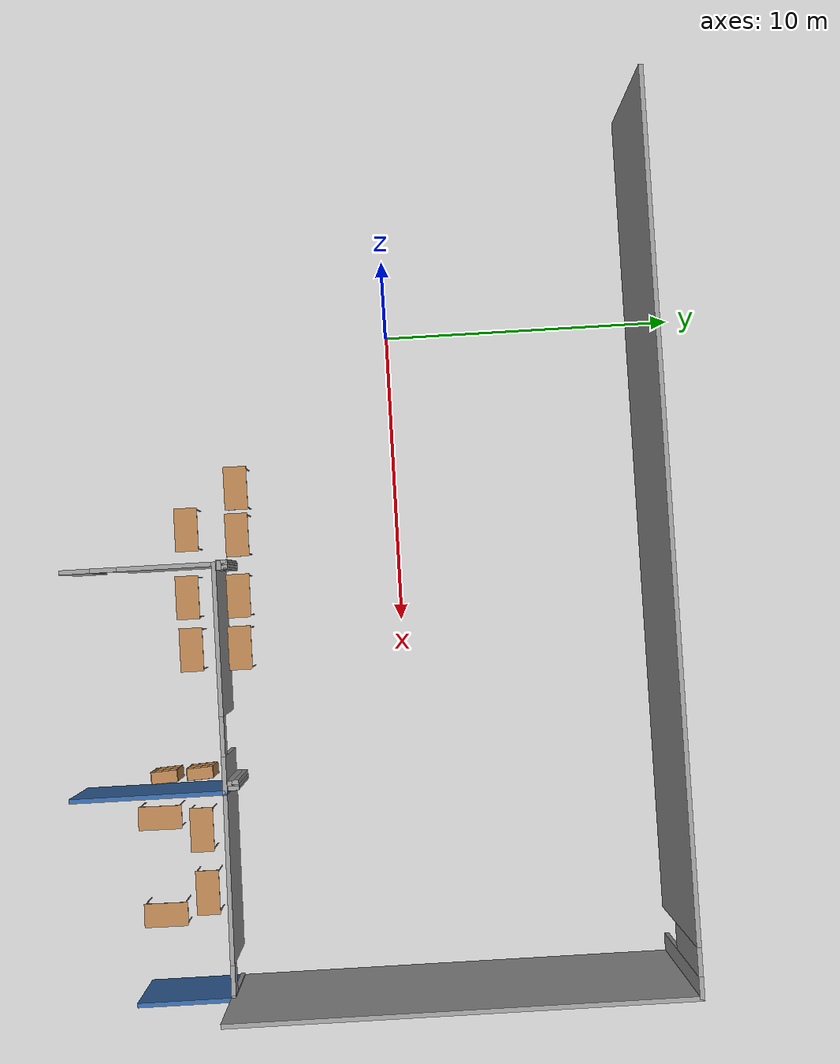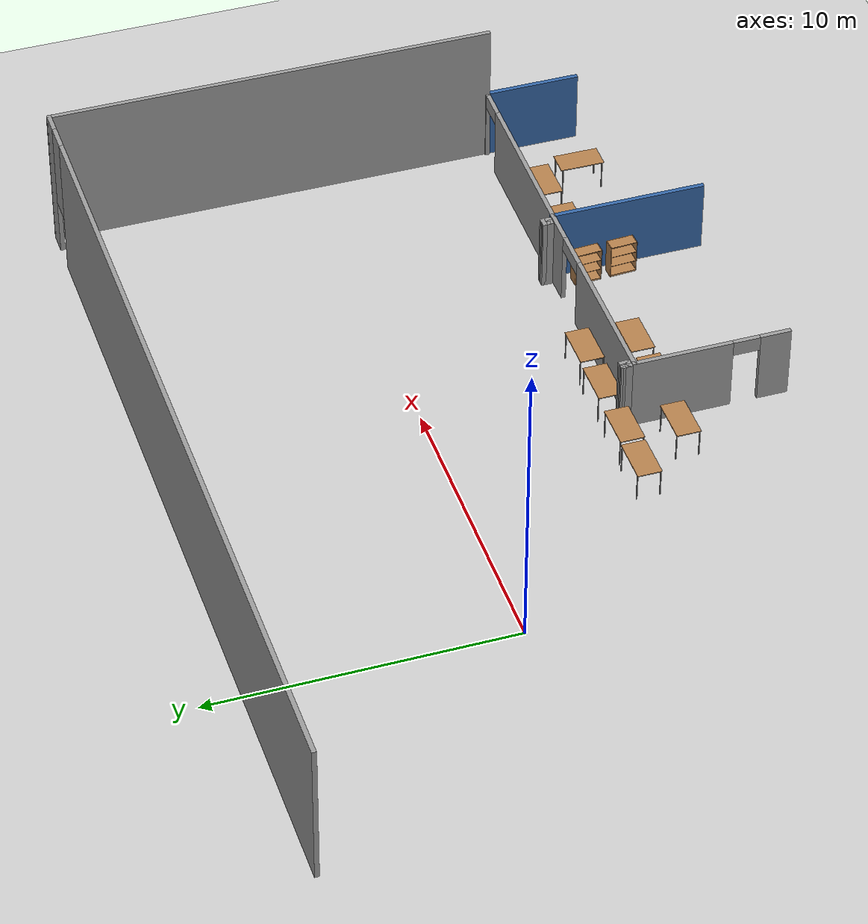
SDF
<sdf version="1.7">
 <world name="default">
  <model name="ground_plane">
   <static>1</static>
   <link name="link">
    <collision name="collision">
     <geometry><plane><normal>0 0 1</normal><size>100 100</size></plane></geometry>
     <surface>
      <contact><collide_bitmask>65535</collide_bitmask></contact>
      <friction><ode><mu>100</mu><mu2>50</mu2></ode></friction>
     </surface>
    </collision>
    <visual name="visual">
     <cast_shadows>0</cast_shadows>
     <geometry><plane><normal>0 0 1</normal><size>100 100</size></plane></geometry>
     <material>
      <script><uri>file://media/materials/scripts/gazebo.material</uri><name>Gazebo/Grey</name></script>
     </material>
    </visual>
   </link>
  </model>
  <model name="XXXXX_office_centered">
   <pose>8.46852 -9.33941 0 0 -0 0</pose>
   <link name="Wall_1">
    <pose>-0.999727 17.9501 0 0 -0 0</pose>
    <visual name="Wall_1_Visual_0">
     <pose>-0.823754 0 2.5 0 -0 0</pose>
     <geometry><box><size>27.8525 0.15 5</size></box></geometry>
     <material>
      <script><uri>file://media/materials/scripts/gazebo.material</uri><name>Gazebo/Grey</name></script>
      <ambient>1 1 1 1</ambient>
     </material>
     <meta><layer>0</layer></meta>
    </visual>
    <collision name="Wall_1_Collision_0">
     <geometry><box><size>27.8525 0.15 5</size></box></geometry>
     <pose>-0.823754 0 2.5 0 -0 0</pose>
    </collision>
    <visual name="Wall_1_Visual_1">
     <pose>14.3762 0 2.5 0 -0 0</pose>
     <geometry><box><size>0.747508 0.15 5</size></box></geometry>
     <material>
      <script><uri>file://media/materials/scripts/gazebo.material</uri><name>Gazebo/Grey</name></script>
      <ambient>1 1 1 1</ambient>
     </material>
     <meta><layer>0</layer></meta>
    </visual>
    <collision name="Wall_1_Collision_1">
     <geometry><box><size>0.747508 0.15 5</size></box></geometry>
     <pose>14.3762 0 2.5 0 -0 0</pose>
    </collision>
    <visual name="Wall_1_Visual_2">
     <pose>13.5525 0 3.5 0 -0 0</pose>
     <geometry><box><size>0.9 0.15 3</size></box></geometry>
     <material>
      <script><uri>file://media/materials/scripts/gazebo.material</uri><name>Gazebo/Grey</name></script>
      <ambient>1 1 1 1</ambient>
     </material>
     <meta><layer>0</layer></meta>
    </visual>
    <collision name="Wall_1_Collision_2">
     <geometry><box><size>0.9 0.15 3</size></box></geometry>
     <pose>13.5525 0 3.5 0 -0 0</pose>
    </collision>
   </link>
   <link name="Wall_122">
    <collision name="Wall_122_Collision">
     <geometry><box><size>0.382149 0.15 2.5</size></box></geometry>
     <pose>0 0 1.25 0 -0 0</pose>
    </collision>
    <visual name="Wall_122_Visual">
     <pose>0 0 1.25 0 -0 0</pose>
     <geometry><box><size>0.382149 0.15 2.5</size></box></geometry>
     <material>
      <script><uri>file://media/materials/scripts/gazebo.material</uri><name>Gazebo/Grey</name></script>
      <ambient>1 1 1 1</ambient>
     </material>
     <meta><layer>0</layer></meta>
    </visual>
    <pose>-0.757152 3.43307 0 0 -0 1.58005</pose>
   </link>
   <link name="Wall_123">
    <collision name="Wall_123_Collision">
     <geometry><box><size>0.330552 0.15 2.5</size></box></geometry>
     <pose>0 0 1.25 0 -0 0</pose>
    </collision>
    <visual name="Wall_123_Visual">
     <pose>0 0 1.25 0 -0 0</pose>
     <geometry><box><size>0.330552 0.15 2.5</size></box></geometry>
     <material>
      <script><uri>file://media/materials/scripts/gazebo.material</uri><name>Gazebo/Grey</name></script>
      <ambient>1 1 1 1</ambient>
     </material>
     <meta><layer>0</layer></meta>
    </visual>
    <pose>-0.66795 3.54914 0 0 -0 0</pose>
   </link>
   <link name="Wall_124">
    <collision name="Wall_124_Collision">
     <geometry><box><size>0.375731 0.15 2.5</size></box></geometry>
     <pose>0 0 1.25 0 -0 0</pose>
    </collision>
    <visual name="Wall_124_Visual">
     <pose>0 0 1.25 0 -0 0</pose>
     <geometry><box><size>0.375731 0.15 2.5</size></box></geometry>
     <material>
      <script><uri>file://media/materials/scripts/gazebo.material</uri><name>Gazebo/Grey</name></script>
      <ambient>1 1 1 1</ambient>
     </material>
     <meta><layer>0</layer></meta>
    </visual>
    <pose>-0.575524 3.43629 0 0 -0 -1.55175</pose>
   </link>
   <link name="Wall_125">
    <collision name="Wall_125_Collision">
     <geometry><box><size>0.319819 0.15 2.5</size></box></geometry>
     <pose>0 0 1.25 0 -0 0</pose>
    </collision>
    <visual name="Wall_125_Visual">
     <pose>0 0 1.25 0 -0 0</pose>
     <geometry><box><size>0.319819 0.15 2.5</size></box></geometry>
     <material>
      <script><uri>file://media/materials/scripts/gazebo.material</uri><name>Gazebo/Grey</name></script>
      <ambient>1 1 1 1</ambient>
     </material>
     <meta><layer>0</layer></meta>
    </visual>
    <pose>-0.658278 3.32452 0 0 -0 3.12893</pose>
   </link>
   <link name="Wall_127">
    <collision name="Wall_127_Collision">
     <geometry><box><size>0.371402 0.15 2.5</size></box></geometry>
     <pose>0 0 1.25 0 -0 0</pose>
    </collision>
    <visual name="Wall_127_Visual">
     <pose>0 0 1.25 0 -0 0</pose>
     <geometry><box><size>0.371402 0.15 2.5</size></box></geometry>
     <material>
      <script><uri>file://media/materials/scripts/gazebo.material</uri><name>Gazebo/Grey</name></script>
      <ambient>1 1 1 1</ambient>
     </material>
     <meta><layer>0</layer></meta>
    </visual>
    <pose>6.56704 3.43844 0 0 -0 1.5708</pose>
   </link>
   <link name="Wall_128">
    <collision name="Wall_128_Collision">
     <geometry><box><size>0.33915 0.15 2.5</size></box></geometry>
     <pose>0 0 1.25 0 -0 0</pose>
    </collision>
    <visual name="Wall_128_Visual">
     <pose>0 0 1.25 0 -0 0</pose>
     <geometry><box><size>0.33915 0.15 2.5</size></box></geometry>
     <material>
      <script><uri>file://media/materials/scripts/gazebo.material</uri><name>Gazebo/Grey</name></script>
      <ambient>1 1 1 1</ambient>
     </material>
     <meta><layer>0</layer></meta>
    </visual>
    <pose>6.66161 3.54914 0 0 -0 0</pose>
   </link>
   <link name="Wall_129">
    <collision name="Wall_129_Collision">
     <geometry><box><size>0.371402 0.15 2.5</size></box></geometry>
     <pose>0 0 1.25 0 -0 0</pose>
    </collision>
    <visual name="Wall_129_Visual">
     <pose>0 0 1.25 0 -0 0</pose>
     <geometry><box><size>0.371402 0.15 2.5</size></box></geometry>
     <material>
      <script><uri>file://media/materials/scripts/gazebo.material</uri><name>Gazebo/Grey</name></script>
      <ambient>1 1 1 1</ambient>
     </material>
     <meta><layer>0</layer></meta>
    </visual>
    <pose>6.75726 3.43844 0 0 -0 -1.56109</pose>
   </link>
   <link name="Wall_130">
    <collision name="Wall_130_Collision">
     <geometry><box><size>0.321968 0.15 2.5</size></box></geometry>
     <pose>0 0 1.25 0 -0 0</pose>
    </collision>
    <visual name="Wall_130_Visual">
     <pose>0 0 1.25 0 -0 0</pose>
     <geometry><box><size>0.321968 0.15 2.5</size></box></geometry>
     <material>
      <script><uri>file://media/materials/scripts/gazebo.material</uri><name>Gazebo/Grey</name></script>
      <ambient>1 1 1 1</ambient>
     </material>
     <meta><layer>0</layer></meta>
    </visual>
    <pose>6.67236 3.32775 0 0 -0 3.14159</pose>
   </link>
   <link name="Wall_2">
    <collision name="Wall_2_Collision">
     <geometry><box><size>15 0.15 5</size></box></geometry>
     <pose>0 0 2.5 0 -0 0</pose>
    </collision>
    <visual name="Wall_2_Visual">
     <pose>0 0 2.5 0 -0 0</pose>
     <geometry><box><size>15 0.15 5</size></box></geometry>
     <material>
      <script><uri>file://media/materials/scripts/gazebo.material</uri><name>Gazebo/Grey</name></script>
      <ambient>1 1 1 1</ambient>
     </material>
     <meta><layer>0</layer></meta>
    </visual>
    <pose>13.6753 10.5251 0 0 -0 -1.5708</pose>
   </link>
   <link name="Wall_3">
    <collision name="Wall_3_Collision">
     <geometry><box><size>3.25 0.15 2.5</size></box></geometry>
     <pose>0 0 1.25 0 -0 0</pose>
    </collision>
    <visual name="Wall_3_Visual">
     <pose>0 0 1.25 0 -0 0</pose>
     <geometry><box><size>3.25 0.15 2.5</size></box></geometry>
     <material>
      <script><uri>file://media/materials/scripts/gazebo.material</uri><name>Gazebo/Grey</name></script>
      <ambient>0.203922 0.396078 0.643137 1</ambient>
     </material>
     <meta><layer>0</layer></meta>
    </visual>
    <pose>13.6751 1.55 0 0 -0 -1.57088</pose>
   </link>
   <link name="Wall_38">
    <pose>3.09665 3.15504 0 0 -0 0</pose>
    <visual name="Wall_38_Visual_0">
     <pose>-1.29453 0 1.25 0 -0 0</pose>
     <geometry><box><size>5.16094 0.15 2.5</size></box></geometry>
     <material>
      <script><uri>file://media/materials/scripts/gazebo.material</uri><name>Gazebo/Grey</name></script>
      <ambient>1 1 1 1</ambient>
     </material>
     <meta><layer>0</layer></meta>
    </visual>
    <collision name="Wall_38_Collision_0">
     <geometry><box><size>5.16094 0.15 2.5</size></box></geometry>
     <pose>-1.29453 0 1.25 0 -0 0</pose>
    </collision>
    <visual name="Wall_38_Visual_1">
     <pose>3.2442 0 1.25 0 -0 0</pose>
     <geometry><box><size>1.26161 0.15 2.5</size></box></geometry>
     <material>
      <script><uri>file://media/materials/scripts/gazebo.material</uri><name>Gazebo/Grey</name></script>
      <ambient>1 1 1 1</ambient>
     </material>
     <meta><layer>0</layer></meta>
    </visual>
    <collision name="Wall_38_Collision_1">
     <geometry><box><size>1.26161 0.15 2.5</size></box></geometry>
     <pose>3.2442 0 1.25 0 -0 0</pose>
    </collision>
    <visual name="Wall_38_Visual_2">
     <pose>1.94966 0 2.25 0 -0 0</pose>
     <geometry><box><size>1.32746 0.15 0.5</size></box></geometry>
     <material>
      <script><uri>file://media/materials/scripts/gazebo.material</uri><name>Gazebo/Grey</name></script>
      <ambient>1 1 1 1</ambient>
     </material>
     <meta><layer>0</layer></meta>
    </visual>
    <collision name="Wall_38_Collision_2">
     <geometry><box><size>1.32746 0.15 0.5</size></box></geometry>
     <pose>1.94966 0 2.25 0 -0 0</pose>
    </collision>
   </link>
   <link name="Wall_39">
    <pose>10.286 3.12759 0 0 -0 -0.008098</pose>
    <visual name="Wall_39_Visual_0">
     <pose>-0.596566 0 1.25 0 -0 0</pose>
     <geometry><box><size>5.73545 0.15 2.5</size></box></geometry>
     <material>
      <script><uri>file://media/materials/scripts/gazebo.material</uri><name>Gazebo/Grey</name></script>
      <ambient>1 1 1 1</ambient>
     </material>
     <meta><layer>0</layer></meta>
    </visual>
    <collision name="Wall_39_Collision_0">
     <geometry><box><size>5.73545 0.15 2.5</size></box></geometry>
     <pose>-0.596566 0 1.25 0 -0 0</pose>
    </collision>
    <visual name="Wall_39_Visual_1">
     <pose>3.36061 0 1.25 0 -0 0</pose>
     <geometry><box><size>0.207364 0.15 2.5</size></box></geometry>
     <material>
      <script><uri>file://media/materials/scripts/gazebo.material</uri><name>Gazebo/Grey</name></script>
      <ambient>1 1 1 1</ambient>
     </material>
     <meta><layer>0</layer></meta>
    </visual>
    <collision name="Wall_39_Collision_1">
     <geometry><box><size>0.207364 0.15 2.5</size></box></geometry>
     <pose>3.36061 0 1.25 0 -0 0</pose>
    </collision>
    <visual name="Wall_39_Visual_2">
     <pose>2.76404 0 2.25 0 -0 0</pose>
     <geometry><box><size>0.985767 0.15 0.5</size></box></geometry>
     <material>
      <script><uri>file://media/materials/scripts/gazebo.material</uri><name>Gazebo/Grey</name></script>
      <ambient>1 1 1 1</ambient>
     </material>
     <meta><layer>0</layer></meta>
    </visual>
    <collision name="Wall_39_Collision_2">
     <geometry><box><size>0.985767 0.15 0.5</size></box></geometry>
     <pose>2.76404 0 2.25 0 -0 0</pose>
    </collision>
   </link>
   <link name="Wall_44">
    <collision name="Wall_44_Collision">
     <geometry><box><size>5.25 0.15 2.5</size></box></geometry>
     <pose>0 0 1.25 0 -0 0</pose>
    </collision>
    <visual name="Wall_44_Visual">
     <pose>0 0 1.25 0 -0 0</pose>
     <geometry><box><size>5.25 0.15 2.5</size></box></geometry>
     <material>
      <script><uri>file://media/materials/scripts/gazebo.material</uri><name>Gazebo/Grey</name></script>
      <ambient>0.203922 0.396078 0.643137 1</ambient>
     </material>
     <meta><layer>0</layer></meta>
    </visual>
    <pose>6.89646 0.605094 0 0 -0 1.57072</pose>
   </link>
   <link name="Wall_46">
    <pose>-0.703353 0.605043 0 0 -0 1.5708</pose>
    <visual name="Wall_46_Visual_0">
     <pose>-2.11145 0 1.25 0 -0 0</pose>
     <geometry><box><size>1.0271 0.15 2.5</size></box></geometry>
     <material>
      <script><uri>file://media/materials/scripts/gazebo.material</uri><name>Gazebo/Grey</name></script>
      <ambient>1 1 1 1</ambient>
     </material>
     <meta><layer>0</layer></meta>
    </visual>
    <collision name="Wall_46_Collision_0">
     <geometry><box><size>1.0271 0.15 2.5</size></box></geometry>
     <pose>-2.11145 0 1.25 0 -0 0</pose>
    </collision>
    <visual name="Wall_46_Visual_1">
     <pose>0.963547 0 1.25 0 -0 0</pose>
     <geometry><box><size>3.3229 0.15 2.5</size></box></geometry>
     <material>
      <script><uri>file://media/materials/scripts/gazebo.material</uri><name>Gazebo/Grey</name></script>
      <ambient>1 1 1 1</ambient>
     </material>
     <meta><layer>0</layer></meta>
    </visual>
    <collision name="Wall_46_Collision_1">
     <geometry><box><size>3.3229 0.15 2.5</size></box></geometry>
     <pose>0.963547 0 1.25 0 -0 0</pose>
    </collision>
    <visual name="Wall_46_Visual_2">
     <pose>-1.1479 0 2.25 0 -0 0</pose>
     <geometry><box><size>0.9 0.15 0.5</size></box></geometry>
     <material>
      <script><uri>file://media/materials/scripts/gazebo.material</uri><name>Gazebo/Grey</name></script>
      <ambient>1 1 1 1</ambient>
     </material>
     <meta><layer>0</layer></meta>
    </visual>
    <collision name="Wall_46_Collision_2">
     <geometry><box><size>0.9 0.15 0.5</size></box></geometry>
     <pose>-1.1479 0 2.25 0 -0 0</pose>
    </collision>
   </link>
   <static>1</static>
  </model>
  <model name="table_18">
   <static>1</static>
   <link name="link">
    <collision name="surface">
     <pose>0 0 1 0 -0 0</pose>
     <geometry><box><size>1.5 0.8 0.03</size></box></geometry>
     <surface><friction><ode><mu>0.6</mu><mu2>0.6</mu2></ode></friction></surface>
    </collision>
    <visual name="visual1">
     <pose>0 0 1 0 -0 0</pose>
     <geometry><box><size>1.5 0.8 0.03</size></box></geometry>
     <material>
      <script><uri>file://media/materials/scripts/gazebo.material</uri><name>Gazebo/Wood</name></script>
     </material>
    </visual>
    <collision name="collision_front_left_leg">
     <pose>0.68 0.38 0.5 0 -0 0</pose>
     <geometry><cylinder><radius>0.02</radius><length>1</length></cylinder></geometry>
    </collision>
    <visual name="visual_front_left_leg">
     <pose>0.68 0.38 0.5 0 -0 0</pose>
     <geometry><cylinder><radius>0.02</radius><length>1</length></cylinder></geometry>
     <material>
      <script><uri>file://media/materials/scripts/gazebo.material</uri><name>Gazebo/Grey</name></script>
     </material>
    </visual>
    <collision name="collision_front_right_leg">
     <pose>0.68 -0.38 0.5 0 -0 0</pose>
     <geometry><cylinder><radius>0.02</radius><length>1</length></cylinder></geometry>
    </collision>
    <visual name="visual_front_right_leg">
     <pose>0.68 -0.38 0.5 0 -0 0</pose>
     <geometry><cylinder><radius>0.02</radius><length>1</length></cylinder></geometry>
     <material>
      <script><uri>file://media/materials/scripts/gazebo.material</uri><name>Gazebo/Grey</name></script>
     </material>
    </visual>
    <collision name="collision_back_right_leg">
     <pose>-0.68 -0.38 0.5 0 -0 0</pose>
     <geometry><cylinder><radius>0.02</radius><length>1</length></cylinder></geometry>
    </collision>
    <visual name="visual_back_right_leg">
     <pose>-0.68 -0.38 0.5 0 -0 0</pose>
     <geometry><cylinder><radius>0.02</radius><length>1</length></cylinder></geometry>
     <material>
      <script><uri>file://media/materials/scripts/gazebo.material</uri><name>Gazebo/Grey</name></script>
     </material>
    </visual>
    <collision name="collision_back_left_leg">
     <pose>-0.68 0.38 0.5 0 -0 0</pose>
     <geometry><cylinder><radius>0.02</radius><length>1</length></cylinder></geometry>
    </collision>
    <visual name="visual_back_left_leg">
     <pose>-0.68 0.38 0.5 0 -0 0</pose>
     <geometry><cylinder><radius>0.02</radius><length>1</length></cylinder></geometry>
     <material>
      <script><uri>file://media/materials/scripts/gazebo.material</uri><name>Gazebo/Grey</name></script>
     </material>
    </visual>
   </link>
   <pose>16.801 -7.26422 0 0 -0 0</pose>
  </model>
  <model name="table_19">
   <static>1</static>
   <link name="link">
    <collision name="surface">
     <pose>0 0 1 0 -0 0</pose>
     <geometry><box><size>1.5 0.8 0.03</size></box></geometry>
     <surface><friction><ode><mu>0.6</mu><mu2>0.6</mu2></ode></friction></surface>
    </collision>
    <visual name="visual1">
     <pose>0 0 1 0 -0 0</pose>
     <geometry><box><size>1.5 0.8 0.03</size></box></geometry>
     <material>
      <script><uri>file://media/materials/scripts/gazebo.material</uri><name>Gazebo/Wood</name></script>
     </material>
    </visual>
    <collision name="collision_front_left_leg">
     <pose>0.68 0.38 0.5 0 -0 0</pose>
     <geometry><cylinder><radius>0.02</radius><length>1</length></cylinder></geometry>
    </collision>
    <visual name="visual_front_left_leg">
     <pose>0.68 0.38 0.5 0 -0 0</pose>
     <geometry><cylinder><radius>0.02</radius><length>1</length></cylinder></geometry>
     <material>
      <script><uri>file://media/materials/scripts/gazebo.material</uri><name>Gazebo/Grey</name></script>
     </material>
    </visual>
    <collision name="collision_front_right_leg">
     <pose>0.68 -0.38 0.5 0 -0 0</pose>
     <geometry><cylinder><radius>0.02</radius><length>1</length></cylinder></geometry>
    </collision>
    <visual name="visual_front_right_leg">
     <pose>0.68 -0.38 0.5 0 -0 0</pose>
     <geometry><cylinder><radius>0.02</radius><length>1</length></cylinder></geometry>
     <material>
      <script><uri>file://media/materials/scripts/gazebo.material</uri><name>Gazebo/Grey</name></script>
     </material>
    </visual>
    <collision name="collision_back_right_leg">
     <pose>-0.68 -0.38 0.5 0 -0 0</pose>
     <geometry><cylinder><radius>0.02</radius><length>1</length></cylinder></geometry>
    </collision>
    <visual name="visual_back_right_leg">
     <pose>-0.68 -0.38 0.5 0 -0 0</pose>
     <geometry><cylinder><radius>0.02</radius><length>1</length></cylinder></geometry>
     <material>
      <script><uri>file://media/materials/scripts/gazebo.material</uri><name>Gazebo/Grey</name></script>
     </material>
    </visual>
    <collision name="collision_back_left_leg">
     <pose>-0.68 0.38 0.5 0 -0 0</pose>
     <geometry><cylinder><radius>0.02</radius><length>1</length></cylinder></geometry>
    </collision>
    <visual name="visual_back_left_leg">
     <pose>-0.68 0.38 0.5 0 -0 0</pose>
     <geometry><cylinder><radius>0.02</radius><length>1</length></cylinder></geometry>
     <material>
      <script><uri>file://media/materials/scripts/gazebo.material</uri><name>Gazebo/Grey</name></script>
     </material>
    </visual>
   </link>
   <pose>18.946 -7.16758 0 0 -0 0</pose>
  </model>
  <model name="table_20">
   <static>1</static>
   <link name="link">
    <collision name="surface">
     <pose>0 0 1 0 -0 0</pose>
     <geometry><box><size>1.5 0.8 0.03</size></box></geometry>
     <surface><friction><ode><mu>0.6</mu><mu2>0.6</mu2></ode></friction></surface>
    </collision>
    <visual name="visual1">
     <pose>0 0 1 0 -0 0</pose>
     <geometry><box><size>1.5 0.8 0.03</size></box></geometry>
     <material>
      <script><uri>file://media/materials/scripts/gazebo.material</uri><name>Gazebo/Wood</name></script>
     </material>
    </visual>
    <collision name="collision_front_left_leg">
     <pose>0.68 0.38 0.5 0 -0 0</pose>
     <geometry><cylinder><radius>0.02</radius><length>1</length></cylinder></geometry>
    </collision>
    <visual name="visual_front_left_leg">
     <pose>0.68 0.38 0.5 0 -0 0</pose>
     <geometry><cylinder><radius>0.02</radius><length>1</length></cylinder></geometry>
     <material>
      <script><uri>file://media/materials/scripts/gazebo.material</uri><name>Gazebo/Grey</name></script>
     </material>
    </visual>
    <collision name="collision_front_right_leg">
     <pose>0.68 -0.38 0.5 0 -0 0</pose>
     <geometry><cylinder><radius>0.02</radius><length>1</length></cylinder></geometry>
    </collision>
    <visual name="visual_front_right_leg">
     <pose>0.68 -0.38 0.5 0 -0 0</pose>
     <geometry><cylinder><radius>0.02</radius><length>1</length></cylinder></geometry>
     <material>
      <script><uri>file://media/materials/scripts/gazebo.material</uri><name>Gazebo/Grey</name></script>
     </material>
    </visual>
    <collision name="collision_back_right_leg">
     <pose>-0.68 -0.38 0.5 0 -0 0</pose>
     <geometry><cylinder><radius>0.02</radius><length>1</length></cylinder></geometry>
    </collision>
    <visual name="visual_back_right_leg">
     <pose>-0.68 -0.38 0.5 0 -0 0</pose>
     <geometry><cylinder><radius>0.02</radius><length>1</length></cylinder></geometry>
     <material>
      <script><uri>file://media/materials/scripts/gazebo.material</uri><name>Gazebo/Grey</name></script>
     </material>
    </visual>
    <collision name="collision_back_left_leg">
     <pose>-0.68 0.38 0.5 0 -0 0</pose>
     <geometry><cylinder><radius>0.02</radius><length>1</length></cylinder></geometry>
    </collision>
    <visual name="visual_back_left_leg">
     <pose>-0.68 0.38 0.5 0 -0 0</pose>
     <geometry><cylinder><radius>0.02</radius><length>1</length></cylinder></geometry>
     <material>
      <script><uri>file://media/materials/scripts/gazebo.material</uri><name>Gazebo/Grey</name></script>
     </material>
    </visual>
   </link>
   <pose>6.47913 -7.29137 0 0 -0 0</pose>
  </model>
  <model name="table_22">
   <static>1</static>
   <link name="link">
    <collision name="surface">
     <pose>0 0 1 0 -0 0</pose>
     <geometry><box><size>1.5 0.8 0.03</size></box></geometry>
     <surface><friction><ode><mu>0.6</mu><mu2>0.6</mu2></ode></friction></surface>
    </collision>
    <visual name="visual1">
     <pose>0 0 1 0 -0 0</pose>
     <geometry><box><size>1.5 0.8 0.03</size></box></geometry>
     <material>
      <script><uri>file://media/materials/scripts/gazebo.material</uri><name>Gazebo/Wood</name></script>
     </material>
    </visual>
    <collision name="collision_front_left_leg">
     <pose>0.68 0.38 0.5 0 -0 0</pose>
     <geometry><cylinder><radius>0.02</radius><length>1</length></cylinder></geometry>
    </collision>
    <visual name="visual_front_left_leg">
     <pose>0.68 0.38 0.5 0 -0 0</pose>
     <geometry><cylinder><radius>0.02</radius><length>1</length></cylinder></geometry>
     <material>
      <script><uri>file://media/materials/scripts/gazebo.material</uri><name>Gazebo/Grey</name></script>
     </material>
    </visual>
    <collision name="collision_front_right_leg">
     <pose>0.68 -0.38 0.5 0 -0 0</pose>
     <geometry><cylinder><radius>0.02</radius><length>1</length></cylinder></geometry>
    </collision>
    <visual name="visual_front_right_leg">
     <pose>0.68 -0.38 0.5 0 -0 0</pose>
     <geometry><cylinder><radius>0.02</radius><length>1</length></cylinder></geometry>
     <material>
      <script><uri>file://media/materials/scripts/gazebo.material</uri><name>Gazebo/Grey</name></script>
     </material>
    </visual>
    <collision name="collision_back_right_leg">
     <pose>-0.68 -0.38 0.5 0 -0 0</pose>
     <geometry><cylinder><radius>0.02</radius><length>1</length></cylinder></geometry>
    </collision>
    <visual name="visual_back_right_leg">
     <pose>-0.68 -0.38 0.5 0 -0 0</pose>
     <geometry><cylinder><radius>0.02</radius><length>1</length></cylinder></geometry>
     <material>
      <script><uri>file://media/materials/scripts/gazebo.material</uri><name>Gazebo/Grey</name></script>
     </material>
    </visual>
    <collision name="collision_back_left_leg">
     <pose>-0.68 0.38 0.5 0 -0 0</pose>
     <geometry><cylinder><radius>0.02</radius><length>1</length></cylinder></geometry>
    </collision>
    <visual name="visual_back_left_leg">
     <pose>-0.68 0.38 0.5 0 -0 0</pose>
     <geometry><cylinder><radius>0.02</radius><length>1</length></cylinder></geometry>
     <material>
      <script><uri>file://media/materials/scripts/gazebo.material</uri><name>Gazebo/Grey</name></script>
     </material>
    </visual>
   </link>
   <pose>8.82493 -7.36244 0 0 -0 0</pose>
  </model>
  <model name="table_23">
   <static>1</static>
   <link name="link">
    <collision name="surface">
     <pose>0 0 1 0 -0 0</pose>
     <geometry><box><size>1.5 0.8 0.03</size></box></geometry>
     <surface><friction><ode><mu>0.6</mu><mu2>0.6</mu2></ode></friction></surface>
    </collision>
    <visual name="visual1">
     <pose>0 0 1 0 -0 0</pose>
     <geometry><box><size>1.5 0.8 0.03</size></box></geometry>
     <material>
      <script><uri>file://media/materials/scripts/gazebo.material</uri><name>Gazebo/Wood</name></script>
     </material>
    </visual>
    <collision name="collision_front_left_leg">
     <pose>0.68 0.38 0.5 0 -0 0</pose>
     <geometry><cylinder><radius>0.02</radius><length>1</length></cylinder></geometry>
    </collision>
    <visual name="visual_front_left_leg">
     <pose>0.68 0.38 0.5 0 -0 0</pose>
     <geometry><cylinder><radius>0.02</radius><length>1</length></cylinder></geometry>
     <material>
      <script><uri>file://media/materials/scripts/gazebo.material</uri><name>Gazebo/Grey</name></script>
     </material>
    </visual>
    <collision name="collision_front_right_leg">
     <pose>0.68 -0.38 0.5 0 -0 0</pose>
     <geometry><cylinder><radius>0.02</radius><length>1</length></cylinder></geometry>
    </collision>
    <visual name="visual_front_right_leg">
     <pose>0.68 -0.38 0.5 0 -0 0</pose>
     <geometry><cylinder><radius>0.02</radius><length>1</length></cylinder></geometry>
     <material>
      <script><uri>file://media/materials/scripts/gazebo.material</uri><name>Gazebo/Grey</name></script>
     </material>
    </visual>
    <collision name="collision_back_right_leg">
     <pose>-0.68 -0.38 0.5 0 -0 0</pose>
     <geometry><cylinder><radius>0.02</radius><length>1</length></cylinder></geometry>
    </collision>
    <visual name="visual_back_right_leg">
     <pose>-0.68 -0.38 0.5 0 -0 0</pose>
     <geometry><cylinder><radius>0.02</radius><length>1</length></cylinder></geometry>
     <material>
      <script><uri>file://media/materials/scripts/gazebo.material</uri><name>Gazebo/Grey</name></script>
     </material>
    </visual>
    <collision name="collision_back_left_leg">
     <pose>-0.68 0.38 0.5 0 -0 0</pose>
     <geometry><cylinder><radius>0.02</radius><length>1</length></cylinder></geometry>
    </collision>
    <visual name="visual_back_left_leg">
     <pose>-0.68 0.38 0.5 0 -0 0</pose>
     <geometry><cylinder><radius>0.02</radius><length>1</length></cylinder></geometry>
     <material>
      <script><uri>file://media/materials/scripts/gazebo.material</uri><name>Gazebo/Grey</name></script>
     </material>
    </visual>
   </link>
   <pose>10.6298 -7.31254 0 0 -0 0</pose>
  </model>
  <model name="table_24">
   <static>1</static>
   <link name="link">
    <collision name="surface">
     <pose>0 0 1 0 -0 0</pose>
     <geometry><box><size>1.5 0.8 0.03</size></box></geometry>
     <surface><friction><ode><mu>0.6</mu><mu2>0.6</mu2></ode></friction></surface>
    </collision>
    <visual name="visual1">
     <pose>0 0 1 0 -0 0</pose>
     <geometry><box><size>1.5 0.8 0.03</size></box></geometry>
     <material>
      <script><uri>file://media/materials/scripts/gazebo.material</uri><name>Gazebo/Wood</name></script>
     </material>
    </visual>
    <collision name="collision_front_left_leg">
     <pose>0.68 0.38 0.5 0 -0 0</pose>
     <geometry><cylinder><radius>0.02</radius><length>1</length></cylinder></geometry>
    </collision>
    <visual name="visual_front_left_leg">
     <pose>0.68 0.38 0.5 0 -0 0</pose>
     <geometry><cylinder><radius>0.02</radius><length>1</length></cylinder></geometry>
     <material>
      <script><uri>file://media/materials/scripts/gazebo.material</uri><name>Gazebo/Grey</name></script>
     </material>
    </visual>
    <collision name="collision_front_right_leg">
     <pose>0.68 -0.38 0.5 0 -0 0</pose>
     <geometry><cylinder><radius>0.02</radius><length>1</length></cylinder></geometry>
    </collision>
    <visual name="visual_front_right_leg">
     <pose>0.68 -0.38 0.5 0 -0 0</pose>
     <geometry><cylinder><radius>0.02</radius><length>1</length></cylinder></geometry>
     <material>
      <script><uri>file://media/materials/scripts/gazebo.material</uri><name>Gazebo/Grey</name></script>
     </material>
    </visual>
    <collision name="collision_back_right_leg">
     <pose>-0.68 -0.38 0.5 0 -0 0</pose>
     <geometry><cylinder><radius>0.02</radius><length>1</length></cylinder></geometry>
    </collision>
    <visual name="visual_back_right_leg">
     <pose>-0.68 -0.38 0.5 0 -0 0</pose>
     <geometry><cylinder><radius>0.02</radius><length>1</length></cylinder></geometry>
     <material>
      <script><uri>file://media/materials/scripts/gazebo.material</uri><name>Gazebo/Grey</name></script>
     </material>
    </visual>
    <collision name="collision_back_left_leg">
     <pose>-0.68 0.38 0.5 0 -0 0</pose>
     <geometry><cylinder><radius>0.02</radius><length>1</length></cylinder></geometry>
    </collision>
    <visual name="visual_back_left_leg">
     <pose>-0.68 0.38 0.5 0 -0 0</pose>
     <geometry><cylinder><radius>0.02</radius><length>1</length></cylinder></geometry>
     <material>
      <script><uri>file://media/materials/scripts/gazebo.material</uri><name>Gazebo/Grey</name></script>
     </material>
    </visual>
   </link>
   <pose>6.75369 -5.54528 0 0 -0 0</pose>
  </model>
  <model name="table_25">
   <static>1</static>
   <link name="link">
    <collision name="surface">
     <pose>0 0 1 0 -0 0</pose>
     <geometry><box><size>1.5 0.8 0.03</size></box></geometry>
     <surface><friction><ode><mu>0.6</mu><mu2>0.6</mu2></ode></friction></surface>
    </collision>
    <visual name="visual1">
     <pose>0 0 1 0 -0 0</pose>
     <geometry><box><size>1.5 0.8 0.03</size></box></geometry>
     <material>
      <script><uri>file://media/materials/scripts/gazebo.material</uri><name>Gazebo/Wood</name></script>
     </material>
    </visual>
    <collision name="collision_front_left_leg">
     <pose>0.68 0.38 0.5 0 -0 0</pose>
     <geometry><cylinder><radius>0.02</radius><length>1</length></cylinder></geometry>
    </collision>
    <visual name="visual_front_left_leg">
     <pose>0.68 0.38 0.5 0 -0 0</pose>
     <geometry><cylinder><radius>0.02</radius><length>1</length></cylinder></geometry>
     <material>
      <script><uri>file://media/materials/scripts/gazebo.material</uri><name>Gazebo/Grey</name></script>
     </material>
    </visual>
    <collision name="collision_front_right_leg">
     <pose>0.68 -0.38 0.5 0 -0 0</pose>
     <geometry><cylinder><radius>0.02</radius><length>1</length></cylinder></geometry>
    </collision>
    <visual name="visual_front_right_leg">
     <pose>0.68 -0.38 0.5 0 -0 0</pose>
     <geometry><cylinder><radius>0.02</radius><length>1</length></cylinder></geometry>
     <material>
      <script><uri>file://media/materials/scripts/gazebo.material</uri><name>Gazebo/Grey</name></script>
     </material>
    </visual>
    <collision name="collision_back_right_leg">
     <pose>-0.68 -0.38 0.5 0 -0 0</pose>
     <geometry><cylinder><radius>0.02</radius><length>1</length></cylinder></geometry>
    </collision>
    <visual name="visual_back_right_leg">
     <pose>-0.68 -0.38 0.5 0 -0 0</pose>
     <geometry><cylinder><radius>0.02</radius><length>1</length></cylinder></geometry>
     <material>
      <script><uri>file://media/materials/scripts/gazebo.material</uri><name>Gazebo/Grey</name></script>
     </material>
    </visual>
    <collision name="collision_back_left_leg">
     <pose>-0.68 0.38 0.5 0 -0 0</pose>
     <geometry><cylinder><radius>0.02</radius><length>1</length></cylinder></geometry>
    </collision>
    <visual name="visual_back_left_leg">
     <pose>-0.68 0.38 0.5 0 -0 0</pose>
     <geometry><cylinder><radius>0.02</radius><length>1</length></cylinder></geometry>
     <material>
      <script><uri>file://media/materials/scripts/gazebo.material</uri><name>Gazebo/Grey</name></script>
     </material>
    </visual>
   </link>
   <pose>5.1313 -5.51044 0 0 -0 0</pose>
  </model>
  <model name="table_27">
   <static>1</static>
   <link name="link">
    <collision name="surface">
     <pose>0 0 1 0 -0 0</pose>
     <geometry><box><size>1.5 0.8 0.03</size></box></geometry>
     <surface><friction><ode><mu>0.6</mu><mu2>0.6</mu2></ode></friction></surface>
    </collision>
    <visual name="visual1">
     <pose>0 0 1 0 -0 0</pose>
     <geometry><box><size>1.5 0.8 0.03</size></box></geometry>
     <material>
      <script><uri>file://media/materials/scripts/gazebo.material</uri><name>Gazebo/Wood</name></script>
     </material>
    </visual>
    <collision name="collision_front_left_leg">
     <pose>0.68 0.38 0.5 0 -0 0</pose>
     <geometry><cylinder><radius>0.02</radius><length>1</length></cylinder></geometry>
    </collision>
    <visual name="visual_front_left_leg">
     <pose>0.68 0.38 0.5 0 -0 0</pose>
     <geometry><cylinder><radius>0.02</radius><length>1</length></cylinder></geometry>
     <material>
      <script><uri>file://media/materials/scripts/gazebo.material</uri><name>Gazebo/Grey</name></script>
     </material>
    </visual>
    <collision name="collision_front_right_leg">
     <pose>0.68 -0.38 0.5 0 -0 0</pose>
     <geometry><cylinder><radius>0.02</radius><length>1</length></cylinder></geometry>
    </collision>
    <visual name="visual_front_right_leg">
     <pose>0.68 -0.38 0.5 0 -0 0</pose>
     <geometry><cylinder><radius>0.02</radius><length>1</length></cylinder></geometry>
     <material>
      <script><uri>file://media/materials/scripts/gazebo.material</uri><name>Gazebo/Grey</name></script>
     </material>
    </visual>
    <collision name="collision_back_right_leg">
     <pose>-0.68 -0.38 0.5 0 -0 0</pose>
     <geometry><cylinder><radius>0.02</radius><length>1</length></cylinder></geometry>
    </collision>
    <visual name="visual_back_right_leg">
     <pose>-0.68 -0.38 0.5 0 -0 0</pose>
     <geometry><cylinder><radius>0.02</radius><length>1</length></cylinder></geometry>
     <material>
      <script><uri>file://media/materials/scripts/gazebo.material</uri><name>Gazebo/Grey</name></script>
     </material>
    </visual>
    <collision name="collision_back_left_leg">
     <pose>-0.68 0.38 0.5 0 -0 0</pose>
     <geometry><cylinder><radius>0.02</radius><length>1</length></cylinder></geometry>
    </collision>
    <visual name="visual_back_left_leg">
     <pose>-0.68 0.38 0.5 0 -0 0</pose>
     <geometry><cylinder><radius>0.02</radius><length>1</length></cylinder></geometry>
     <material>
      <script><uri>file://media/materials/scripts/gazebo.material</uri><name>Gazebo/Grey</name></script>
     </material>
    </visual>
   </link>
   <pose>8.8621 -5.59459 0 0 -0 0</pose>
  </model>
  <model name="table_28">
   <static>1</static>
   <link name="link">
    <collision name="surface">
     <pose>0 0 1 0 -0 0</pose>
     <geometry><box><size>1.5 0.8 0.03</size></box></geometry>
     <surface><friction><ode><mu>0.6</mu><mu2>0.6</mu2></ode></friction></surface>
    </collision>
    <visual name="visual1">
     <pose>0 0 1 0 -0 0</pose>
     <geometry><box><size>1.5 0.8 0.03</size></box></geometry>
     <material>
      <script><uri>file://media/materials/scripts/gazebo.material</uri><name>Gazebo/Wood</name></script>
     </material>
    </visual>
    <collision name="collision_front_left_leg">
     <pose>0.68 0.38 0.5 0 -0 0</pose>
     <geometry><cylinder><radius>0.02</radius><length>1</length></cylinder></geometry>
    </collision>
    <visual name="visual_front_left_leg">
     <pose>0.68 0.38 0.5 0 -0 0</pose>
     <geometry><cylinder><radius>0.02</radius><length>1</length></cylinder></geometry>
     <material>
      <script><uri>file://media/materials/scripts/gazebo.material</uri><name>Gazebo/Grey</name></script>
     </material>
    </visual>
    <collision name="collision_front_right_leg">
     <pose>0.68 -0.38 0.5 0 -0 0</pose>
     <geometry><cylinder><radius>0.02</radius><length>1</length></cylinder></geometry>
    </collision>
    <visual name="visual_front_right_leg">
     <pose>0.68 -0.38 0.5 0 -0 0</pose>
     <geometry><cylinder><radius>0.02</radius><length>1</length></cylinder></geometry>
     <material>
      <script><uri>file://media/materials/scripts/gazebo.material</uri><name>Gazebo/Grey</name></script>
     </material>
    </visual>
    <collision name="collision_back_right_leg">
     <pose>-0.68 -0.38 0.5 0 -0 0</pose>
     <geometry><cylinder><radius>0.02</radius><length>1</length></cylinder></geometry>
    </collision>
    <visual name="visual_back_right_leg">
     <pose>-0.68 -0.38 0.5 0 -0 0</pose>
     <geometry><cylinder><radius>0.02</radius><length>1</length></cylinder></geometry>
     <material>
      <script><uri>file://media/materials/scripts/gazebo.material</uri><name>Gazebo/Grey</name></script>
     </material>
    </visual>
    <collision name="collision_back_left_leg">
     <pose>-0.68 0.38 0.5 0 -0 0</pose>
     <geometry><cylinder><radius>0.02</radius><length>1</length></cylinder></geometry>
    </collision>
    <visual name="visual_back_left_leg">
     <pose>-0.68 0.38 0.5 0 -0 0</pose>
     <geometry><cylinder><radius>0.02</radius><length>1</length></cylinder></geometry>
     <material>
      <script><uri>file://media/materials/scripts/gazebo.material</uri><name>Gazebo/Grey</name></script>
     </material>
    </visual>
   </link>
   <pose>10.6567 -5.63519 0 0 -0 0</pose>
  </model>
  <model name="table_26_clone_2">
   <static>1</static>
   <link name="link">
    <collision name="surface">
     <pose>0 0 1 0 -0 0</pose>
     <geometry><box><size>1.5 0.8 0.03</size></box></geometry>
     <surface><friction><ode><mu>0.6</mu><mu2>0.6</mu2></ode></friction></surface>
    </collision>
    <visual name="visual1">
     <pose>0 0 1 0 -0 0</pose>
     <geometry><box><size>1.5 0.8 0.03</size></box></geometry>
     <material>
      <script><uri>file://media/materials/scripts/gazebo.material</uri><name>Gazebo/Wood</name></script>
     </material>
    </visual>
    <collision name="collision_front_left_leg">
     <pose>0.68 0.38 0.5 0 -0 0</pose>
     <geometry><cylinder><radius>0.02</radius><length>1</length></cylinder></geometry>
    </collision>
    <visual name="visual_front_left_leg">
     <pose>0.68 0.38 0.5 0 -0 0</pose>
     <geometry><cylinder><radius>0.02</radius><length>1</length></cylinder></geometry>
     <material>
      <script><uri>file://media/materials/scripts/gazebo.material</uri><name>Gazebo/Grey</name></script>
     </material>
    </visual>
    <collision name="collision_front_right_leg">
     <pose>0.68 -0.38 0.5 0 -0 0</pose>
     <geometry><cylinder><radius>0.02</radius><length>1</length></cylinder></geometry>
    </collision>
    <visual name="visual_front_right_leg">
     <pose>0.68 -0.38 0.5 0 -0 0</pose>
     <geometry><cylinder><radius>0.02</radius><length>1</length></cylinder></geometry>
     <material>
      <script><uri>file://media/materials/scripts/gazebo.material</uri><name>Gazebo/Grey</name></script>
     </material>
    </visual>
    <collision name="collision_back_right_leg">
     <pose>-0.68 -0.38 0.5 0 -0 0</pose>
     <geometry><cylinder><radius>0.02</radius><length>1</length></cylinder></geometry>
    </collision>
    <visual name="visual_back_right_leg">
     <pose>-0.68 -0.38 0.5 0 -0 0</pose>
     <geometry><cylinder><radius>0.02</radius><length>1</length></cylinder></geometry>
     <material>
      <script><uri>file://media/materials/scripts/gazebo.material</uri><name>Gazebo/Grey</name></script>
     </material>
    </visual>
    <collision name="collision_back_left_leg">
     <pose>-0.68 0.38 0.5 0 -0 0</pose>
     <geometry><cylinder><radius>0.02</radius><length>1</length></cylinder></geometry>
    </collision>
    <visual name="visual_back_left_leg">
     <pose>-0.68 0.38 0.5 0 -0 0</pose>
     <geometry><cylinder><radius>0.02</radius><length>1</length></cylinder></geometry>
     <material>
      <script><uri>file://media/materials/scripts/gazebo.material</uri><name>Gazebo/Grey</name></script>
     </material>
    </visual>
   </link>
   <pose>16.3141 -8.67587 0 0 0 -1.57974</pose>
  </model>
  <model name="table_26_clone_4">
   <static>1</static>
   <link name="link">
    <collision name="surface">
     <pose>0 0 1 0 -0 0</pose>
     <geometry><box><size>1.5 0.8 0.03</size></box></geometry>
     <surface><friction><ode><mu>0.6</mu><mu2>0.6</mu2></ode></friction></surface>
    </collision>
    <visual name="visual1">
     <pose>0 0 1 0 -0 0</pose>
     <geometry><box><size>1.5 0.8 0.03</size></box></geometry>
     <material>
      <script><uri>file://media/materials/scripts/gazebo.material</uri><name>Gazebo/Wood</name></script>
     </material>
    </visual>
    <collision name="collision_front_left_leg">
     <pose>0.68 0.38 0.5 0 -0 0</pose>
     <geometry><cylinder><radius>0.02</radius><length>1</length></cylinder></geometry>
    </collision>
    <visual name="visual_front_left_leg">
     <pose>0.68 0.38 0.5 0 -0 0</pose>
     <geometry><cylinder><radius>0.02</radius><length>1</length></cylinder></geometry>
     <material>
      <script><uri>file://media/materials/scripts/gazebo.material</uri><name>Gazebo/Grey</name></script>
     </material>
    </visual>
    <collision name="collision_front_right_leg">
     <pose>0.68 -0.38 0.5 0 -0 0</pose>
     <geometry><cylinder><radius>0.02</radius><length>1</length></cylinder></geometry>
    </collision>
    <visual name="visual_front_right_leg">
     <pose>0.68 -0.38 0.5 0 -0 0</pose>
     <geometry><cylinder><radius>0.02</radius><length>1</length></cylinder></geometry>
     <material>
      <script><uri>file://media/materials/scripts/gazebo.material</uri><name>Gazebo/Grey</name></script>
     </material>
    </visual>
    <collision name="collision_back_right_leg">
     <pose>-0.68 -0.38 0.5 0 -0 0</pose>
     <geometry><cylinder><radius>0.02</radius><length>1</length></cylinder></geometry>
    </collision>
    <visual name="visual_back_right_leg">
     <pose>-0.68 -0.38 0.5 0 -0 0</pose>
     <geometry><cylinder><radius>0.02</radius><length>1</length></cylinder></geometry>
     <material>
      <script><uri>file://media/materials/scripts/gazebo.material</uri><name>Gazebo/Grey</name></script>
     </material>
    </visual>
    <collision name="collision_back_left_leg">
     <pose>-0.68 0.38 0.5 0 -0 0</pose>
     <geometry><cylinder><radius>0.02</radius><length>1</length></cylinder></geometry>
    </collision>
    <visual name="visual_back_left_leg">
     <pose>-0.68 0.38 0.5 0 -0 0</pose>
     <geometry><cylinder><radius>0.02</radius><length>1</length></cylinder></geometry>
     <material>
      <script><uri>file://media/materials/scripts/gazebo.material</uri><name>Gazebo/Grey</name></script>
     </material>
    </visual>
   </link>
   <pose>19.614 -8.62445 0 0 0 -1.57974</pose>
  </model>
  <model name="bookshelf_9_clone">
   <static>1</static>
   <link name="link">
    <inertial><mass>1</mass></inertial>
    <collision name="collision_back">
     <pose>0 0.005 0.6 0 -0 0</pose>
     <geometry><box><size>0.9 0.01 1.2</size></box></geometry>
    </collision>
    <visual name="visual1">
     <pose>0 0.005 0.6 0 -0 0</pose>
     <geometry><box><size>0.9 0.01 1.2</size></box></geometry>
     <material>
      <script><uri>file://media/materials/scripts/gazebo.material</uri><name>Gazebo/Wood</name></script>
     </material>
    </visual>
    <collision name="left_side">
     <pose>0.45 -0.195 0.6 0 -0 0</pose>
     <geometry><box><size>0.02 0.4 1.2</size></box></geometry>
    </collision>
    <visual name="visual2">
     <pose>0.45 -0.195 0.6 0 -0 0</pose>
     <geometry><box><size>0.02 0.4 1.2</size></box></geometry>
     <material>
      <script><uri>file://media/materials/scripts/gazebo.material</uri><name>Gazebo/Wood</name></script>
     </material>
    </visual>
    <collision name="right_side">
     <pose>-0.45 -0.195 0.6 0 -0 0</pose>
     <geometry><box><size>0.02 0.4 1.2</size></box></geometry>
    </collision>
    <visual name="visual3">
     <pose>-0.45 -0.195 0.6 0 -0 0</pose>
     <geometry><box><size>0.02 0.4 1.2</size></box></geometry>
     <material>
      <script><uri>file://media/materials/scripts/gazebo.material</uri><name>Gazebo/Wood</name></script>
     </material>
    </visual>
    <collision name="bottom">
     <pose>0 -0.195 0.03 0 -0 0</pose>
     <geometry><box><size>0.88 0.4 0.06</size></box></geometry>
    </collision>
    <visual name="visual4">
     <pose>0 -0.195 0.03 0 -0 0</pose>
     <geometry><box><size>0.88 0.4 0.06</size></box></geometry>
     <material>
      <script><uri>file://media/materials/scripts/gazebo.material</uri><name>Gazebo/Wood</name></script>
     </material>
    </visual>
    <collision name="top">
     <pose>0 -0.195 1.19 0 -0 0</pose>
     <geometry><box><size>0.88 0.4 0.02</size></box></geometry>
    </collision>
    <visual name="visual5">
     <pose>0 -0.195 1.19 0 -0 0</pose>
     <geometry><box><size>0.88 0.4 0.02</size></box></geometry>
     <material>
      <script><uri>file://media/materials/scripts/gazebo.material</uri><name>Gazebo/Wood</name></script>
     </material>
    </visual>
    <collision name="low_shelf">
     <pose>0 -0.195 0.43 0 -0 0</pose>
     <geometry><box><size>0.88 0.4 0.02</size></box></geometry>
    </collision>
    <visual name="visual6">
     <pose>0 -0.195 0.43 0 -0 0</pose>
     <geometry><box><size>0.88 0.4 0.02</size></box></geometry>
     <material>
      <script><uri>file://media/materials/scripts/gazebo.material</uri><name>Gazebo/Wood</name></script>
     </material>
    </visual>
    <collision name="high_shelf">
     <pose>0 -0.195 0.8 0 -0 0</pose>
     <geometry><box><size>0.88 0.4 0.02</size></box></geometry>
    </collision>
    <visual name="visual7">
     <pose>0 -0.195 0.8 0 -0 0</pose>
     <geometry><box><size>0.88 0.4 0.02</size></box></geometry>
     <material>
      <script><uri>file://media/materials/scripts/gazebo.material</uri><name>Gazebo/Wood</name></script>
     </material>
    </visual>
   </link>
   <pose>15.1019 -8.41519 0 0 0 -1.51799</pose>
  </model>
  <model name="bookshelf_9_clone_clone">
   <static>1</static>
   <link name="link">
    <inertial><mass>1</mass></inertial>
    <collision name="collision_back">
     <pose>0 0.005 0.6 0 -0 0</pose>
     <geometry><box><size>0.9 0.01 1.2</size></box></geometry>
    </collision>
    <visual name="visual1">
     <pose>0 0.005 0.6 0 -0 0</pose>
     <geometry><box><size>0.9 0.01 1.2</size></box></geometry>
     <material>
      <script><uri>file://media/materials/scripts/gazebo.material</uri><name>Gazebo/Wood</name></script>
     </material>
    </visual>
    <collision name="left_side">
     <pose>0.45 -0.195 0.6 0 -0 0</pose>
     <geometry><box><size>0.02 0.4 1.2</size></box></geometry>
    </collision>
    <visual name="visual2">
     <pose>0.45 -0.195 0.6 0 -0 0</pose>
     <geometry><box><size>0.02 0.4 1.2</size></box></geometry>
     <material>
      <script><uri>file://media/materials/scripts/gazebo.material</uri><name>Gazebo/Wood</name></script>
     </material>
    </visual>
    <collision name="right_side">
     <pose>-0.45 -0.195 0.6 0 -0 0</pose>
     <geometry><box><size>0.02 0.4 1.2</size></box></geometry>
    </collision>
    <visual name="visual3">
     <pose>-0.45 -0.195 0.6 0 -0 0</pose>
     <geometry><box><size>0.02 0.4 1.2</size></box></geometry>
     <material>
      <script><uri>file://media/materials/scripts/gazebo.material</uri><name>Gazebo/Wood</name></script>
     </material>
    </visual>
    <collision name="bottom">
     <pose>0 -0.195 0.03 0 -0 0</pose>
     <geometry><box><size>0.88 0.4 0.06</size></box></geometry>
    </collision>
    <visual name="visual4">
     <pose>0 -0.195 0.03 0 -0 0</pose>
     <geometry><box><size>0.88 0.4 0.06</size></box></geometry>
     <material>
      <script><uri>file://media/materials/scripts/gazebo.material</uri><name>Gazebo/Wood</name></script>
     </material>
    </visual>
    <collision name="top">
     <pose>0 -0.195 1.19 0 -0 0</pose>
     <geometry><box><size>0.88 0.4 0.02</size></box></geometry>
    </collision>
    <visual name="visual5">
     <pose>0 -0.195 1.19 0 -0 0</pose>
     <geometry><box><size>0.88 0.4 0.02</size></box></geometry>
     <material>
      <script><uri>file://media/materials/scripts/gazebo.material</uri><name>Gazebo/Wood</name></script>
     </material>
    </visual>
    <collision name="low_shelf">
     <pose>0 -0.195 0.43 0 -0 0</pose>
     <geometry><box><size>0.88 0.4 0.02</size></box></geometry>
    </collision>
    <visual name="visual6">
     <pose>0 -0.195 0.43 0 -0 0</pose>
     <geometry><box><size>0.88 0.4 0.02</size></box></geometry>
     <material>
      <script><uri>file://media/materials/scripts/gazebo.material</uri><name>Gazebo/Wood</name></script>
     </material>
    </visual>
    <collision name="high_shelf">
     <pose>0 -0.195 0.8 0 -0 0</pose>
     <geometry><box><size>0.88 0.4 0.02</size></box></geometry>
    </collision>
    <visual name="visual7">
     <pose>0 -0.195 0.8 0 -0 0</pose>
     <geometry><box><size>0.88 0.4 0.02</size></box></geometry>
     <material>
      <script><uri>file://media/materials/scripts/gazebo.material</uri><name>Gazebo/Wood</name></script>
     </material>
    </visual>
   </link>
   <pose>15.0508 -7.19097 0 0 0 -1.51799</pose>
  </model>
 </world>
</sdf>
